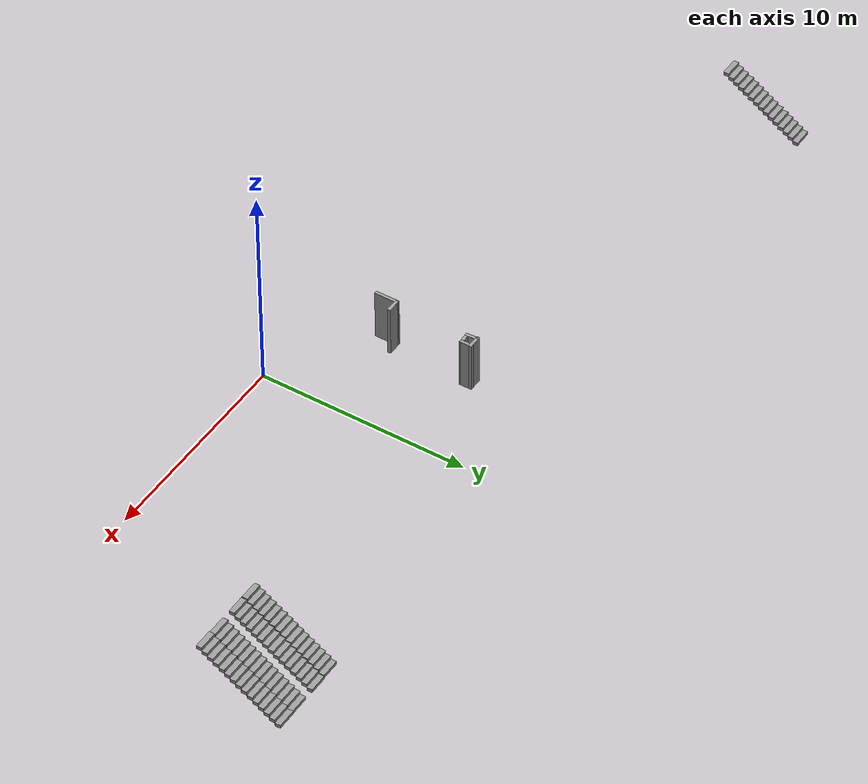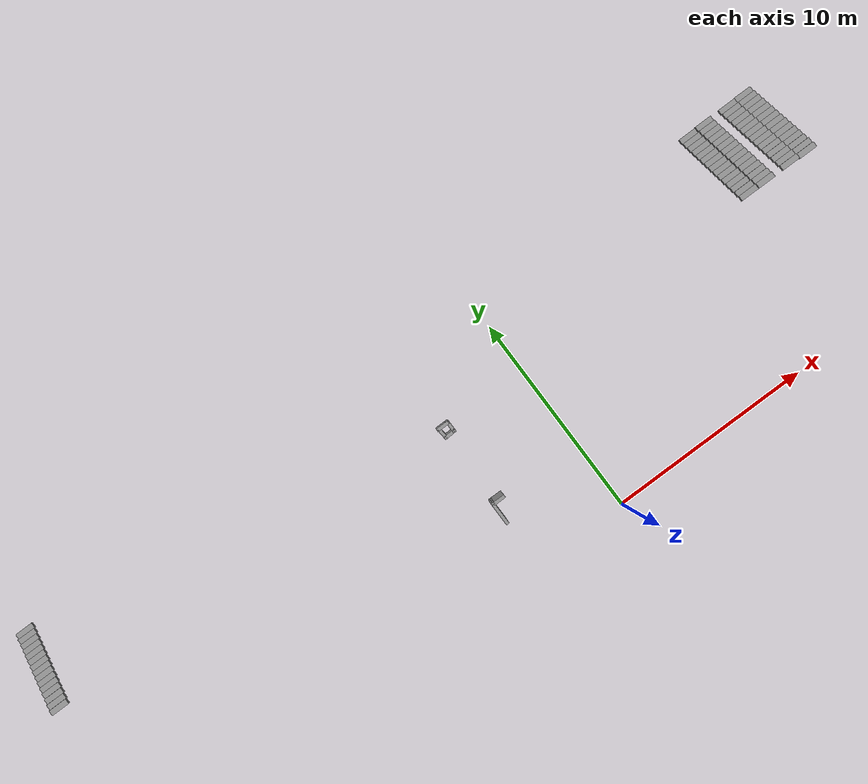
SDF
<sdf version="1.7">
 <model name="TD_n1_largo">
  <pose>-6.3187 -9.13173 0 0 -0 0</pose>
  <link name="Stairs_4">
   <visual name="Stairs_4_Visual_0">
    <pose>-18.7413 20.6787 0.083333 0 -0 0</pose>
    <geometry><box><size>0.9 0.258667 0.166667</size></box></geometry>
    <material>
     <script><uri>file://media/materials/scripts/gazebo.material</uri><name>Gazebo/Grey</name></script>
     <ambient>1 1 1 1</ambient>
    </material>
    <meta><layer>0</layer></meta>
   </visual>
   <collision name="Stairs_4_Collision_0">
    <geometry><box><size>0.9 0.258667 0.166667</size></box></geometry>
    <pose>-18.7413 20.6787 0.083333 0 -0 0</pose>
   </collision>
   <visual name="Stairs_4_Visual_1">
    <pose>-18.7413 20.4201 0.25 0 -0 0</pose>
    <geometry><box><size>0.9 0.258667 0.166667</size></box></geometry>
    <material>
     <script><uri>file://media/materials/scripts/gazebo.material</uri><name>Gazebo/Grey</name></script>
     <ambient>1 1 1 1</ambient>
    </material>
    <meta><layer>0</layer></meta>
   </visual>
   <collision name="Stairs_4_Collision_1">
    <geometry><box><size>0.9 0.258667 0.166667</size></box></geometry>
    <pose>-18.7413 20.4201 0.25 0 -0 0</pose>
   </collision>
   <visual name="Stairs_4_Visual_2">
    <pose>-18.7413 20.1614 0.416667 0 -0 0</pose>
    <geometry><box><size>0.9 0.258667 0.166667</size></box></geometry>
    <material>
     <script><uri>file://media/materials/scripts/gazebo.material</uri><name>Gazebo/Grey</name></script>
     <ambient>1 1 1 1</ambient>
    </material>
    <meta><layer>0</layer></meta>
   </visual>
   <collision name="Stairs_4_Collision_2">
    <geometry><box><size>0.9 0.258667 0.166667</size></box></geometry>
    <pose>-18.7413 20.1614 0.416667 0 -0 0</pose>
   </collision>
   <visual name="Stairs_4_Visual_3">
    <pose>-18.7413 19.9027 0.583333 0 -0 0</pose>
    <geometry><box><size>0.9 0.258667 0.166667</size></box></geometry>
    <material>
     <script><uri>file://media/materials/scripts/gazebo.material</uri><name>Gazebo/Grey</name></script>
     <ambient>1 1 1 1</ambient>
    </material>
    <meta><layer>0</layer></meta>
   </visual>
   <collision name="Stairs_4_Collision_3">
    <geometry><box><size>0.9 0.258667 0.166667</size></box></geometry>
    <pose>-18.7413 19.9027 0.583333 0 -0 0</pose>
   </collision>
   <visual name="Stairs_4_Visual_4">
    <pose>-18.7413 19.6441 0.75 0 -0 0</pose>
    <geometry><box><size>0.9 0.258667 0.166667</size></box></geometry>
    <material>
     <script><uri>file://media/materials/scripts/gazebo.material</uri><name>Gazebo/Grey</name></script>
     <ambient>1 1 1 1</ambient>
    </material>
    <meta><layer>0</layer></meta>
   </visual>
   <collision name="Stairs_4_Collision_4">
    <geometry><box><size>0.9 0.258667 0.166667</size></box></geometry>
    <pose>-18.7413 19.6441 0.75 0 -0 0</pose>
   </collision>
   <visual name="Stairs_4_Visual_5">
    <pose>-18.7413 19.3854 0.916667 0 -0 0</pose>
    <geometry><box><size>0.9 0.258667 0.166667</size></box></geometry>
    <material>
     <script><uri>file://media/materials/scripts/gazebo.material</uri><name>Gazebo/Grey</name></script>
     <ambient>1 1 1 1</ambient>
    </material>
    <meta><layer>0</layer></meta>
   </visual>
   <collision name="Stairs_4_Collision_5">
    <geometry><box><size>0.9 0.258667 0.166667</size></box></geometry>
    <pose>-18.7413 19.3854 0.916667 0 -0 0</pose>
   </collision>
   <visual name="Stairs_4_Visual_6">
    <pose>-18.7413 19.1267 1.08333 0 -0 0</pose>
    <geometry><box><size>0.9 0.258667 0.166667</size></box></geometry>
    <material>
     <script><uri>file://media/materials/scripts/gazebo.material</uri><name>Gazebo/Grey</name></script>
     <ambient>1 1 1 1</ambient>
    </material>
    <meta><layer>0</layer></meta>
   </visual>
   <collision name="Stairs_4_Collision_6">
    <geometry><box><size>0.9 0.258667 0.166667</size></box></geometry>
    <pose>-18.7413 19.1267 1.08333 0 -0 0</pose>
   </collision>
   <visual name="Stairs_4_Visual_7">
    <pose>-18.7413 18.8681 1.25 0 -0 0</pose>
    <geometry><box><size>0.9 0.258667 0.166667</size></box></geometry>
    <material>
     <script><uri>file://media/materials/scripts/gazebo.material</uri><name>Gazebo/Grey</name></script>
     <ambient>1 1 1 1</ambient>
    </material>
    <meta><layer>0</layer></meta>
   </visual>
   <collision name="Stairs_4_Collision_7">
    <geometry><box><size>0.9 0.258667 0.166667</size></box></geometry>
    <pose>-18.7413 18.8681 1.25 0 -0 0</pose>
   </collision>
   <visual name="Stairs_4_Visual_8">
    <pose>-18.7413 18.6094 1.41667 0 -0 0</pose>
    <geometry><box><size>0.9 0.258667 0.166667</size></box></geometry>
    <material>
     <script><uri>file://media/materials/scripts/gazebo.material</uri><name>Gazebo/Grey</name></script>
     <ambient>1 1 1 1</ambient>
    </material>
    <meta><layer>0</layer></meta>
   </visual>
   <collision name="Stairs_4_Collision_8">
    <geometry><box><size>0.9 0.258667 0.166667</size></box></geometry>
    <pose>-18.7413 18.6094 1.41667 0 -0 0</pose>
   </collision>
   <visual name="Stairs_4_Visual_9">
    <pose>-18.7413 18.3507 1.58333 0 -0 0</pose>
    <geometry><box><size>0.9 0.258667 0.166667</size></box></geometry>
    <material>
     <script><uri>file://media/materials/scripts/gazebo.material</uri><name>Gazebo/Grey</name></script>
     <ambient>1 1 1 1</ambient>
    </material>
    <meta><layer>0</layer></meta>
   </visual>
   <collision name="Stairs_4_Collision_9">
    <geometry><box><size>0.9 0.258667 0.166667</size></box></geometry>
    <pose>-18.7413 18.3507 1.58333 0 -0 0</pose>
   </collision>
   <visual name="Stairs_4_Visual_10">
    <pose>-18.7413 18.0921 1.75 0 -0 0</pose>
    <geometry><box><size>0.9 0.258667 0.166667</size></box></geometry>
    <material>
     <script><uri>file://media/materials/scripts/gazebo.material</uri><name>Gazebo/Grey</name></script>
     <ambient>1 1 1 1</ambient>
    </material>
    <meta><layer>0</layer></meta>
   </visual>
   <collision name="Stairs_4_Collision_10">
    <geometry><box><size>0.9 0.258667 0.166667</size></box></geometry>
    <pose>-18.7413 18.0921 1.75 0 -0 0</pose>
   </collision>
   <visual name="Stairs_4_Visual_11">
    <pose>-18.7413 17.8334 1.91667 0 -0 0</pose>
    <geometry><box><size>0.9 0.258667 0.166667</size></box></geometry>
    <material>
     <script><uri>file://media/materials/scripts/gazebo.material</uri><name>Gazebo/Grey</name></script>
     <ambient>1 1 1 1</ambient>
    </material>
    <meta><layer>0</layer></meta>
   </visual>
   <collision name="Stairs_4_Collision_11">
    <geometry><box><size>0.9 0.258667 0.166667</size></box></geometry>
    <pose>-18.7413 17.8334 1.91667 0 -0 0</pose>
   </collision>
   <visual name="Stairs_4_Visual_12">
    <pose>-18.7413 17.5747 2.08333 0 -0 0</pose>
    <geometry><box><size>0.9 0.258667 0.166667</size></box></geometry>
    <material>
     <script><uri>file://media/materials/scripts/gazebo.material</uri><name>Gazebo/Grey</name></script>
     <ambient>1 1 1 1</ambient>
    </material>
    <meta><layer>0</layer></meta>
   </visual>
   <collision name="Stairs_4_Collision_12">
    <geometry><box><size>0.9 0.258667 0.166667</size></box></geometry>
    <pose>-18.7413 17.5747 2.08333 0 -0 0</pose>
   </collision>
   <visual name="Stairs_4_Visual_13">
    <pose>-18.7413 17.3161 2.25 0 -0 0</pose>
    <geometry><box><size>0.9 0.258667 0.166667</size></box></geometry>
    <material>
     <script><uri>file://media/materials/scripts/gazebo.material</uri><name>Gazebo/Grey</name></script>
     <ambient>1 1 1 1</ambient>
    </material>
    <meta><layer>0</layer></meta>
   </visual>
   <collision name="Stairs_4_Collision_13">
    <geometry><box><size>0.9 0.258667 0.166667</size></box></geometry>
    <pose>-18.7413 17.3161 2.25 0 -0 0</pose>
   </collision>
   <visual name="Stairs_4_Visual_14">
    <pose>-18.7413 17.0574 2.41667 0 -0 0</pose>
    <geometry><box><size>0.9 0.258667 0.166667</size></box></geometry>
    <material>
     <script><uri>file://media/materials/scripts/gazebo.material</uri><name>Gazebo/Grey</name></script>
     <ambient>1 1 1 1</ambient>
    </material>
    <meta><layer>0</layer></meta>
   </visual>
   <collision name="Stairs_4_Collision_14">
    <geometry><box><size>0.9 0.258667 0.166667</size></box></geometry>
    <pose>-18.7413 17.0574 2.41667 0 -0 0</pose>
   </collision>
  </link>
  <link name="Stairs_5">
   <visual name="Stairs_5_Visual_0">
    <pose>18.6942 20.6701 0.083333 0 -0 0</pose>
    <geometry><box><size>0.893539 0.257667 0.166667</size></box></geometry>
    <material>
     <script><uri>file://media/materials/scripts/gazebo.material</uri><name>Gazebo/Grey</name></script>
     <ambient>1 1 1 1</ambient>
    </material>
    <meta><layer>0</layer></meta>
   </visual>
   <collision name="Stairs_5_Collision_0">
    <geometry><box><size>0.893539 0.257667 0.166667</size></box></geometry>
    <pose>18.6942 20.6701 0.083333 0 -0 0</pose>
   </collision>
   <visual name="Stairs_5_Visual_1">
    <pose>18.6942 20.4124 0.25 0 -0 0</pose>
    <geometry><box><size>0.893539 0.257667 0.166667</size></box></geometry>
    <material>
     <script><uri>file://media/materials/scripts/gazebo.material</uri><name>Gazebo/Grey</name></script>
     <ambient>1 1 1 1</ambient>
    </material>
    <meta><layer>0</layer></meta>
   </visual>
   <collision name="Stairs_5_Collision_1">
    <geometry><box><size>0.893539 0.257667 0.166667</size></box></geometry>
    <pose>18.6942 20.4124 0.25 0 -0 0</pose>
   </collision>
   <visual name="Stairs_5_Visual_2">
    <pose>18.6942 20.1547 0.416667 0 -0 0</pose>
    <geometry><box><size>0.893539 0.257667 0.166667</size></box></geometry>
    <material>
     <script><uri>file://media/materials/scripts/gazebo.material</uri><name>Gazebo/Grey</name></script>
     <ambient>1 1 1 1</ambient>
    </material>
    <meta><layer>0</layer></meta>
   </visual>
   <collision name="Stairs_5_Collision_2">
    <geometry><box><size>0.893539 0.257667 0.166667</size></box></geometry>
    <pose>18.6942 20.1547 0.416667 0 -0 0</pose>
   </collision>
   <visual name="Stairs_5_Visual_3">
    <pose>18.6942 19.8971 0.583333 0 -0 0</pose>
    <geometry><box><size>0.893539 0.257667 0.166667</size></box></geometry>
    <material>
     <script><uri>file://media/materials/scripts/gazebo.material</uri><name>Gazebo/Grey</name></script>
     <ambient>1 1 1 1</ambient>
    </material>
    <meta><layer>0</layer></meta>
   </visual>
   <collision name="Stairs_5_Collision_3">
    <geometry><box><size>0.893539 0.257667 0.166667</size></box></geometry>
    <pose>18.6942 19.8971 0.583333 0 -0 0</pose>
   </collision>
   <visual name="Stairs_5_Visual_4">
    <pose>18.6942 19.6394 0.75 0 -0 0</pose>
    <geometry><box><size>0.893539 0.257667 0.166667</size></box></geometry>
    <material>
     <script><uri>file://media/materials/scripts/gazebo.material</uri><name>Gazebo/Grey</name></script>
     <ambient>1 1 1 1</ambient>
    </material>
    <meta><layer>0</layer></meta>
   </visual>
   <collision name="Stairs_5_Collision_4">
    <geometry><box><size>0.893539 0.257667 0.166667</size></box></geometry>
    <pose>18.6942 19.6394 0.75 0 -0 0</pose>
   </collision>
   <visual name="Stairs_5_Visual_5">
    <pose>18.6942 19.3817 0.916667 0 -0 0</pose>
    <geometry><box><size>0.893539 0.257667 0.166667</size></box></geometry>
    <material>
     <script><uri>file://media/materials/scripts/gazebo.material</uri><name>Gazebo/Grey</name></script>
     <ambient>1 1 1 1</ambient>
    </material>
    <meta><layer>0</layer></meta>
   </visual>
   <collision name="Stairs_5_Collision_5">
    <geometry><box><size>0.893539 0.257667 0.166667</size></box></geometry>
    <pose>18.6942 19.3817 0.916667 0 -0 0</pose>
   </collision>
   <visual name="Stairs_5_Visual_6">
    <pose>18.6942 19.1241 1.08333 0 -0 0</pose>
    <geometry><box><size>0.893539 0.257667 0.166667</size></box></geometry>
    <material>
     <script><uri>file://media/materials/scripts/gazebo.material</uri><name>Gazebo/Grey</name></script>
     <ambient>1 1 1 1</ambient>
    </material>
    <meta><layer>0</layer></meta>
   </visual>
   <collision name="Stairs_5_Collision_6">
    <geometry><box><size>0.893539 0.257667 0.166667</size></box></geometry>
    <pose>18.6942 19.1241 1.08333 0 -0 0</pose>
   </collision>
   <visual name="Stairs_5_Visual_7">
    <pose>18.6942 18.8664 1.25 0 -0 0</pose>
    <geometry><box><size>0.893539 0.257667 0.166667</size></box></geometry>
    <material>
     <script><uri>file://media/materials/scripts/gazebo.material</uri><name>Gazebo/Grey</name></script>
     <ambient>1 1 1 1</ambient>
    </material>
    <meta><layer>0</layer></meta>
   </visual>
   <collision name="Stairs_5_Collision_7">
    <geometry><box><size>0.893539 0.257667 0.166667</size></box></geometry>
    <pose>18.6942 18.8664 1.25 0 -0 0</pose>
   </collision>
   <visual name="Stairs_5_Visual_8">
    <pose>18.6942 18.6087 1.41667 0 -0 0</pose>
    <geometry><box><size>0.893539 0.257667 0.166667</size></box></geometry>
    <material>
     <script><uri>file://media/materials/scripts/gazebo.material</uri><name>Gazebo/Grey</name></script>
     <ambient>1 1 1 1</ambient>
    </material>
    <meta><layer>0</layer></meta>
   </visual>
   <collision name="Stairs_5_Collision_8">
    <geometry><box><size>0.893539 0.257667 0.166667</size></box></geometry>
    <pose>18.6942 18.6087 1.41667 0 -0 0</pose>
   </collision>
   <visual name="Stairs_5_Visual_9">
    <pose>18.6942 18.3511 1.58333 0 -0 0</pose>
    <geometry><box><size>0.893539 0.257667 0.166667</size></box></geometry>
    <material>
     <script><uri>file://media/materials/scripts/gazebo.material</uri><name>Gazebo/Grey</name></script>
     <ambient>1 1 1 1</ambient>
    </material>
    <meta><layer>0</layer></meta>
   </visual>
   <collision name="Stairs_5_Collision_9">
    <geometry><box><size>0.893539 0.257667 0.166667</size></box></geometry>
    <pose>18.6942 18.3511 1.58333 0 -0 0</pose>
   </collision>
   <visual name="Stairs_5_Visual_10">
    <pose>18.6942 18.0934 1.75 0 -0 0</pose>
    <geometry><box><size>0.893539 0.257667 0.166667</size></box></geometry>
    <material>
     <script><uri>file://media/materials/scripts/gazebo.material</uri><name>Gazebo/Grey</name></script>
     <ambient>1 1 1 1</ambient>
    </material>
    <meta><layer>0</layer></meta>
   </visual>
   <collision name="Stairs_5_Collision_10">
    <geometry><box><size>0.893539 0.257667 0.166667</size></box></geometry>
    <pose>18.6942 18.0934 1.75 0 -0 0</pose>
   </collision>
   <visual name="Stairs_5_Visual_11">
    <pose>18.6942 17.8357 1.91667 0 -0 0</pose>
    <geometry><box><size>0.893539 0.257667 0.166667</size></box></geometry>
    <material>
     <script><uri>file://media/materials/scripts/gazebo.material</uri><name>Gazebo/Grey</name></script>
     <ambient>1 1 1 1</ambient>
    </material>
    <meta><layer>0</layer></meta>
   </visual>
   <collision name="Stairs_5_Collision_11">
    <geometry><box><size>0.893539 0.257667 0.166667</size></box></geometry>
    <pose>18.6942 17.8357 1.91667 0 -0 0</pose>
   </collision>
   <visual name="Stairs_5_Visual_12">
    <pose>18.6942 17.5781 2.08333 0 -0 0</pose>
    <geometry><box><size>0.893539 0.257667 0.166667</size></box></geometry>
    <material>
     <script><uri>file://media/materials/scripts/gazebo.material</uri><name>Gazebo/Grey</name></script>
     <ambient>1 1 1 1</ambient>
    </material>
    <meta><layer>0</layer></meta>
   </visual>
   <collision name="Stairs_5_Collision_12">
    <geometry><box><size>0.893539 0.257667 0.166667</size></box></geometry>
    <pose>18.6942 17.5781 2.08333 0 -0 0</pose>
   </collision>
   <visual name="Stairs_5_Visual_13">
    <pose>18.6942 17.3204 2.25 0 -0 0</pose>
    <geometry><box><size>0.893539 0.257667 0.166667</size></box></geometry>
    <material>
     <script><uri>file://media/materials/scripts/gazebo.material</uri><name>Gazebo/Grey</name></script>
     <ambient>1 1 1 1</ambient>
    </material>
    <meta><layer>0</layer></meta>
   </visual>
   <collision name="Stairs_5_Collision_13">
    <geometry><box><size>0.893539 0.257667 0.166667</size></box></geometry>
    <pose>18.6942 17.3204 2.25 0 -0 0</pose>
   </collision>
   <visual name="Stairs_5_Visual_14">
    <pose>18.6942 17.0627 2.41667 0 -0 0</pose>
    <geometry><box><size>0.893539 0.257667 0.166667</size></box></geometry>
    <material>
     <script><uri>file://media/materials/scripts/gazebo.material</uri><name>Gazebo/Grey</name></script>
     <ambient>1 1 1 1</ambient>
    </material>
    <meta><layer>0</layer></meta>
   </visual>
   <collision name="Stairs_5_Collision_14">
    <geometry><box><size>0.893539 0.257667 0.166667</size></box></geometry>
    <pose>18.6942 17.0627 2.41667 0 -0 0</pose>
   </collision>
  </link>
  <link name="Stairs_6">
   <visual name="Stairs_6_Visual_0">
    <pose>19.6067 20.6995 0.083333 0 -0 0</pose>
    <geometry><box><size>0.863121 0.259695 0.166667</size></box></geometry>
    <material>
     <script><uri>file://media/materials/scripts/gazebo.material</uri><name>Gazebo/Grey</name></script>
     <ambient>1 1 1 1</ambient>
    </material>
    <meta><layer>0</layer></meta>
   </visual>
   <collision name="Stairs_6_Collision_0">
    <geometry><box><size>0.863121 0.259695 0.166667</size></box></geometry>
    <pose>19.6067 20.6995 0.083333 0 -0 0</pose>
   </collision>
   <visual name="Stairs_6_Visual_1">
    <pose>19.6067 20.4398 0.25 0 -0 0</pose>
    <geometry><box><size>0.863121 0.259695 0.166667</size></box></geometry>
    <material>
     <script><uri>file://media/materials/scripts/gazebo.material</uri><name>Gazebo/Grey</name></script>
     <ambient>1 1 1 1</ambient>
    </material>
    <meta><layer>0</layer></meta>
   </visual>
   <collision name="Stairs_6_Collision_1">
    <geometry><box><size>0.863121 0.259695 0.166667</size></box></geometry>
    <pose>19.6067 20.4398 0.25 0 -0 0</pose>
   </collision>
   <visual name="Stairs_6_Visual_2">
    <pose>19.6067 20.1801 0.416667 0 -0 0</pose>
    <geometry><box><size>0.863121 0.259695 0.166667</size></box></geometry>
    <material>
     <script><uri>file://media/materials/scripts/gazebo.material</uri><name>Gazebo/Grey</name></script>
     <ambient>1 1 1 1</ambient>
    </material>
    <meta><layer>0</layer></meta>
   </visual>
   <collision name="Stairs_6_Collision_2">
    <geometry><box><size>0.863121 0.259695 0.166667</size></box></geometry>
    <pose>19.6067 20.1801 0.416667 0 -0 0</pose>
   </collision>
   <visual name="Stairs_6_Visual_3">
    <pose>19.6067 19.9204 0.583333 0 -0 0</pose>
    <geometry><box><size>0.863121 0.259695 0.166667</size></box></geometry>
    <material>
     <script><uri>file://media/materials/scripts/gazebo.material</uri><name>Gazebo/Grey</name></script>
     <ambient>1 1 1 1</ambient>
    </material>
    <meta><layer>0</layer></meta>
   </visual>
   <collision name="Stairs_6_Collision_3">
    <geometry><box><size>0.863121 0.259695 0.166667</size></box></geometry>
    <pose>19.6067 19.9204 0.583333 0 -0 0</pose>
   </collision>
   <visual name="Stairs_6_Visual_4">
    <pose>19.6067 19.6607 0.75 0 -0 0</pose>
    <geometry><box><size>0.863121 0.259695 0.166667</size></box></geometry>
    <material>
     <script><uri>file://media/materials/scripts/gazebo.material</uri><name>Gazebo/Grey</name></script>
     <ambient>1 1 1 1</ambient>
    </material>
    <meta><layer>0</layer></meta>
   </visual>
   <collision name="Stairs_6_Collision_4">
    <geometry><box><size>0.863121 0.259695 0.166667</size></box></geometry>
    <pose>19.6067 19.6607 0.75 0 -0 0</pose>
   </collision>
   <visual name="Stairs_6_Visual_5">
    <pose>19.6067 19.401 0.916667 0 -0 0</pose>
    <geometry><box><size>0.863121 0.259695 0.166667</size></box></geometry>
    <material>
     <script><uri>file://media/materials/scripts/gazebo.material</uri><name>Gazebo/Grey</name></script>
     <ambient>1 1 1 1</ambient>
    </material>
    <meta><layer>0</layer></meta>
   </visual>
   <collision name="Stairs_6_Collision_5">
    <geometry><box><size>0.863121 0.259695 0.166667</size></box></geometry>
    <pose>19.6067 19.401 0.916667 0 -0 0</pose>
   </collision>
   <visual name="Stairs_6_Visual_6">
    <pose>19.6067 19.1413 1.08333 0 -0 0</pose>
    <geometry><box><size>0.863121 0.259695 0.166667</size></box></geometry>
    <material>
     <script><uri>file://media/materials/scripts/gazebo.material</uri><name>Gazebo/Grey</name></script>
     <ambient>1 1 1 1</ambient>
    </material>
    <meta><layer>0</layer></meta>
   </visual>
   <collision name="Stairs_6_Collision_6">
    <geometry><box><size>0.863121 0.259695 0.166667</size></box></geometry>
    <pose>19.6067 19.1413 1.08333 0 -0 0</pose>
   </collision>
   <visual name="Stairs_6_Visual_7">
    <pose>19.6067 18.8816 1.25 0 -0 0</pose>
    <geometry><box><size>0.863121 0.259695 0.166667</size></box></geometry>
    <material>
     <script><uri>file://media/materials/scripts/gazebo.material</uri><name>Gazebo/Grey</name></script>
     <ambient>1 1 1 1</ambient>
    </material>
    <meta><layer>0</layer></meta>
   </visual>
   <collision name="Stairs_6_Collision_7">
    <geometry><box><size>0.863121 0.259695 0.166667</size></box></geometry>
    <pose>19.6067 18.8816 1.25 0 -0 0</pose>
   </collision>
   <visual name="Stairs_6_Visual_8">
    <pose>19.6067 18.6219 1.41667 0 -0 0</pose>
    <geometry><box><size>0.863121 0.259695 0.166667</size></box></geometry>
    <material>
     <script><uri>file://media/materials/scripts/gazebo.material</uri><name>Gazebo/Grey</name></script>
     <ambient>1 1 1 1</ambient>
    </material>
    <meta><layer>0</layer></meta>
   </visual>
   <collision name="Stairs_6_Collision_8">
    <geometry><box><size>0.863121 0.259695 0.166667</size></box></geometry>
    <pose>19.6067 18.6219 1.41667 0 -0 0</pose>
   </collision>
   <visual name="Stairs_6_Visual_9">
    <pose>19.6067 18.3622 1.58333 0 -0 0</pose>
    <geometry><box><size>0.863121 0.259695 0.166667</size></box></geometry>
    <material>
     <script><uri>file://media/materials/scripts/gazebo.material</uri><name>Gazebo/Grey</name></script>
     <ambient>1 1 1 1</ambient>
    </material>
    <meta><layer>0</layer></meta>
   </visual>
   <collision name="Stairs_6_Collision_9">
    <geometry><box><size>0.863121 0.259695 0.166667</size></box></geometry>
    <pose>19.6067 18.3622 1.58333 0 -0 0</pose>
   </collision>
   <visual name="Stairs_6_Visual_10">
    <pose>19.6067 18.1025 1.75 0 -0 0</pose>
    <geometry><box><size>0.863121 0.259695 0.166667</size></box></geometry>
    <material>
     <script><uri>file://media/materials/scripts/gazebo.material</uri><name>Gazebo/Grey</name></script>
     <ambient>1 1 1 1</ambient>
    </material>
    <meta><layer>0</layer></meta>
   </visual>
   <collision name="Stairs_6_Collision_10">
    <geometry><box><size>0.863121 0.259695 0.166667</size></box></geometry>
    <pose>19.6067 18.1025 1.75 0 -0 0</pose>
   </collision>
   <visual name="Stairs_6_Visual_11">
    <pose>19.6067 17.8428 1.91667 0 -0 0</pose>
    <geometry><box><size>0.863121 0.259695 0.166667</size></box></geometry>
    <material>
     <script><uri>file://media/materials/scripts/gazebo.material</uri><name>Gazebo/Grey</name></script>
     <ambient>1 1 1 1</ambient>
    </material>
    <meta><layer>0</layer></meta>
   </visual>
   <collision name="Stairs_6_Collision_11">
    <geometry><box><size>0.863121 0.259695 0.166667</size></box></geometry>
    <pose>19.6067 17.8428 1.91667 0 -0 0</pose>
   </collision>
   <visual name="Stairs_6_Visual_12">
    <pose>19.6067 17.5831 2.08333 0 -0 0</pose>
    <geometry><box><size>0.863121 0.259695 0.166667</size></box></geometry>
    <material>
     <script><uri>file://media/materials/scripts/gazebo.material</uri><name>Gazebo/Grey</name></script>
     <ambient>1 1 1 1</ambient>
    </material>
    <meta><layer>0</layer></meta>
   </visual>
   <collision name="Stairs_6_Collision_12">
    <geometry><box><size>0.863121 0.259695 0.166667</size></box></geometry>
    <pose>19.6067 17.5831 2.08333 0 -0 0</pose>
   </collision>
   <visual name="Stairs_6_Visual_13">
    <pose>19.6067 17.3234 2.25 0 -0 0</pose>
    <geometry><box><size>0.863121 0.259695 0.166667</size></box></geometry>
    <material>
     <script><uri>file://media/materials/scripts/gazebo.material</uri><name>Gazebo/Grey</name></script>
     <ambient>1 1 1 1</ambient>
    </material>
    <meta><layer>0</layer></meta>
   </visual>
   <collision name="Stairs_6_Collision_13">
    <geometry><box><size>0.863121 0.259695 0.166667</size></box></geometry>
    <pose>19.6067 17.3234 2.25 0 -0 0</pose>
   </collision>
   <visual name="Stairs_6_Visual_14">
    <pose>19.6067 17.0637 2.41667 0 -0 0</pose>
    <geometry><box><size>0.863121 0.259695 0.166667</size></box></geometry>
    <material>
     <script><uri>file://media/materials/scripts/gazebo.material</uri><name>Gazebo/Grey</name></script>
     <ambient>1 1 1 1</ambient>
    </material>
    <meta><layer>0</layer></meta>
   </visual>
   <collision name="Stairs_6_Collision_14">
    <geometry><box><size>0.863121 0.259695 0.166667</size></box></geometry>
    <pose>19.6067 17.0637 2.41667 0 -0 0</pose>
   </collision>
  </link>
  <link name="Stairs_7">
   <visual name="Stairs_7_Visual_0">
    <pose>20.9222 20.6848 0.083333 0 -0 0</pose>
    <geometry><box><size>0.908748 0.258681 0.166667</size></box></geometry>
    <material>
     <script><uri>file://media/materials/scripts/gazebo.material</uri><name>Gazebo/Grey</name></script>
     <ambient>1 1 1 1</ambient>
    </material>
    <meta><layer>0</layer></meta>
   </visual>
   <collision name="Stairs_7_Collision_0">
    <geometry><box><size>0.908748 0.258681 0.166667</size></box></geometry>
    <pose>20.9222 20.6848 0.083333 0 -0 0</pose>
   </collision>
   <visual name="Stairs_7_Visual_1">
    <pose>20.9222 20.4261 0.25 0 -0 0</pose>
    <geometry><box><size>0.908748 0.258681 0.166667</size></box></geometry>
    <material>
     <script><uri>file://media/materials/scripts/gazebo.material</uri><name>Gazebo/Grey</name></script>
     <ambient>1 1 1 1</ambient>
    </material>
    <meta><layer>0</layer></meta>
   </visual>
   <collision name="Stairs_7_Collision_1">
    <geometry><box><size>0.908748 0.258681 0.166667</size></box></geometry>
    <pose>20.9222 20.4261 0.25 0 -0 0</pose>
   </collision>
   <visual name="Stairs_7_Visual_2">
    <pose>20.9222 20.1674 0.416667 0 -0 0</pose>
    <geometry><box><size>0.908748 0.258681 0.166667</size></box></geometry>
    <material>
     <script><uri>file://media/materials/scripts/gazebo.material</uri><name>Gazebo/Grey</name></script>
     <ambient>1 1 1 1</ambient>
    </material>
    <meta><layer>0</layer></meta>
   </visual>
   <collision name="Stairs_7_Collision_2">
    <geometry><box><size>0.908748 0.258681 0.166667</size></box></geometry>
    <pose>20.9222 20.1674 0.416667 0 -0 0</pose>
   </collision>
   <visual name="Stairs_7_Visual_3">
    <pose>20.9222 19.9087 0.583333 0 -0 0</pose>
    <geometry><box><size>0.908748 0.258681 0.166667</size></box></geometry>
    <material>
     <script><uri>file://media/materials/scripts/gazebo.material</uri><name>Gazebo/Grey</name></script>
     <ambient>1 1 1 1</ambient>
    </material>
    <meta><layer>0</layer></meta>
   </visual>
   <collision name="Stairs_7_Collision_3">
    <geometry><box><size>0.908748 0.258681 0.166667</size></box></geometry>
    <pose>20.9222 19.9087 0.583333 0 -0 0</pose>
   </collision>
   <visual name="Stairs_7_Visual_4">
    <pose>20.9222 19.65 0.75 0 -0 0</pose>
    <geometry><box><size>0.908748 0.258681 0.166667</size></box></geometry>
    <material>
     <script><uri>file://media/materials/scripts/gazebo.material</uri><name>Gazebo/Grey</name></script>
     <ambient>1 1 1 1</ambient>
    </material>
    <meta><layer>0</layer></meta>
   </visual>
   <collision name="Stairs_7_Collision_4">
    <geometry><box><size>0.908748 0.258681 0.166667</size></box></geometry>
    <pose>20.9222 19.65 0.75 0 -0 0</pose>
   </collision>
   <visual name="Stairs_7_Visual_5">
    <pose>20.9222 19.3914 0.916667 0 -0 0</pose>
    <geometry><box><size>0.908748 0.258681 0.166667</size></box></geometry>
    <material>
     <script><uri>file://media/materials/scripts/gazebo.material</uri><name>Gazebo/Grey</name></script>
     <ambient>1 1 1 1</ambient>
    </material>
    <meta><layer>0</layer></meta>
   </visual>
   <collision name="Stairs_7_Collision_5">
    <geometry><box><size>0.908748 0.258681 0.166667</size></box></geometry>
    <pose>20.9222 19.3914 0.916667 0 -0 0</pose>
   </collision>
   <visual name="Stairs_7_Visual_6">
    <pose>20.9222 19.1327 1.08333 0 -0 0</pose>
    <geometry><box><size>0.908748 0.258681 0.166667</size></box></geometry>
    <material>
     <script><uri>file://media/materials/scripts/gazebo.material</uri><name>Gazebo/Grey</name></script>
     <ambient>1 1 1 1</ambient>
    </material>
    <meta><layer>0</layer></meta>
   </visual>
   <collision name="Stairs_7_Collision_6">
    <geometry><box><size>0.908748 0.258681 0.166667</size></box></geometry>
    <pose>20.9222 19.1327 1.08333 0 -0 0</pose>
   </collision>
   <visual name="Stairs_7_Visual_7">
    <pose>20.9222 18.874 1.25 0 -0 0</pose>
    <geometry><box><size>0.908748 0.258681 0.166667</size></box></geometry>
    <material>
     <script><uri>file://media/materials/scripts/gazebo.material</uri><name>Gazebo/Grey</name></script>
     <ambient>1 1 1 1</ambient>
    </material>
    <meta><layer>0</layer></meta>
   </visual>
   <collision name="Stairs_7_Collision_7">
    <geometry><box><size>0.908748 0.258681 0.166667</size></box></geometry>
    <pose>20.9222 18.874 1.25 0 -0 0</pose>
   </collision>
   <visual name="Stairs_7_Visual_8">
    <pose>20.9222 18.6153 1.41667 0 -0 0</pose>
    <geometry><box><size>0.908748 0.258681 0.166667</size></box></geometry>
    <material>
     <script><uri>file://media/materials/scripts/gazebo.material</uri><name>Gazebo/Grey</name></script>
     <ambient>1 1 1 1</ambient>
    </material>
    <meta><layer>0</layer></meta>
   </visual>
   <collision name="Stairs_7_Collision_8">
    <geometry><box><size>0.908748 0.258681 0.166667</size></box></geometry>
    <pose>20.9222 18.6153 1.41667 0 -0 0</pose>
   </collision>
   <visual name="Stairs_7_Visual_9">
    <pose>20.9222 18.3566 1.58333 0 -0 0</pose>
    <geometry><box><size>0.908748 0.258681 0.166667</size></box></geometry>
    <material>
     <script><uri>file://media/materials/scripts/gazebo.material</uri><name>Gazebo/Grey</name></script>
     <ambient>1 1 1 1</ambient>
    </material>
    <meta><layer>0</layer></meta>
   </visual>
   <collision name="Stairs_7_Collision_9">
    <geometry><box><size>0.908748 0.258681 0.166667</size></box></geometry>
    <pose>20.9222 18.3566 1.58333 0 -0 0</pose>
   </collision>
   <visual name="Stairs_7_Visual_10">
    <pose>20.9222 18.0979 1.75 0 -0 0</pose>
    <geometry><box><size>0.908748 0.258681 0.166667</size></box></geometry>
    <material>
     <script><uri>file://media/materials/scripts/gazebo.material</uri><name>Gazebo/Grey</name></script>
     <ambient>1 1 1 1</ambient>
    </material>
    <meta><layer>0</layer></meta>
   </visual>
   <collision name="Stairs_7_Collision_10">
    <geometry><box><size>0.908748 0.258681 0.166667</size></box></geometry>
    <pose>20.9222 18.0979 1.75 0 -0 0</pose>
   </collision>
   <visual name="Stairs_7_Visual_11">
    <pose>20.9222 17.8393 1.91667 0 -0 0</pose>
    <geometry><box><size>0.908748 0.258681 0.166667</size></box></geometry>
    <material>
     <script><uri>file://media/materials/scripts/gazebo.material</uri><name>Gazebo/Grey</name></script>
     <ambient>1 1 1 1</ambient>
    </material>
    <meta><layer>0</layer></meta>
   </visual>
   <collision name="Stairs_7_Collision_11">
    <geometry><box><size>0.908748 0.258681 0.166667</size></box></geometry>
    <pose>20.9222 17.8393 1.91667 0 -0 0</pose>
   </collision>
   <visual name="Stairs_7_Visual_12">
    <pose>20.9222 17.5806 2.08333 0 -0 0</pose>
    <geometry><box><size>0.908748 0.258681 0.166667</size></box></geometry>
    <material>
     <script><uri>file://media/materials/scripts/gazebo.material</uri><name>Gazebo/Grey</name></script>
     <ambient>1 1 1 1</ambient>
    </material>
    <meta><layer>0</layer></meta>
   </visual>
   <collision name="Stairs_7_Collision_12">
    <geometry><box><size>0.908748 0.258681 0.166667</size></box></geometry>
    <pose>20.9222 17.5806 2.08333 0 -0 0</pose>
   </collision>
   <visual name="Stairs_7_Visual_13">
    <pose>20.9222 17.3219 2.25 0 -0 0</pose>
    <geometry><box><size>0.908748 0.258681 0.166667</size></box></geometry>
    <material>
     <script><uri>file://media/materials/scripts/gazebo.material</uri><name>Gazebo/Grey</name></script>
     <ambient>1 1 1 1</ambient>
    </material>
    <meta><layer>0</layer></meta>
   </visual>
   <collision name="Stairs_7_Collision_13">
    <geometry><box><size>0.908748 0.258681 0.166667</size></box></geometry>
    <pose>20.9222 17.3219 2.25 0 -0 0</pose>
   </collision>
   <visual name="Stairs_7_Visual_14">
    <pose>20.9222 17.0632 2.41667 0 -0 0</pose>
    <geometry><box><size>0.908748 0.258681 0.166667</size></box></geometry>
    <material>
     <script><uri>file://media/materials/scripts/gazebo.material</uri><name>Gazebo/Grey</name></script>
     <ambient>1 1 1 1</ambient>
    </material>
    <meta><layer>0</layer></meta>
   </visual>
   <collision name="Stairs_7_Collision_14">
    <geometry><box><size>0.908748 0.258681 0.166667</size></box></geometry>
    <pose>20.9222 17.0632 2.41667 0 -0 0</pose>
   </collision>
  </link>
  <link name="Stairs_8">
   <visual name="Stairs_8_Visual_0">
    <pose>21.8195 20.6984 0.083333 0 -0 0</pose>
    <geometry><box><size>0.908748 0.261723 0.166667</size></box></geometry>
    <material>
     <script><uri>file://media/materials/scripts/gazebo.material</uri><name>Gazebo/Grey</name></script>
     <ambient>1 1 1 1</ambient>
    </material>
    <meta><layer>0</layer></meta>
   </visual>
   <collision name="Stairs_8_Collision_0">
    <geometry><box><size>0.908748 0.261723 0.166667</size></box></geometry>
    <pose>21.8195 20.6984 0.083333 0 -0 0</pose>
   </collision>
   <visual name="Stairs_8_Visual_1">
    <pose>21.8195 20.4367 0.25 0 -0 0</pose>
    <geometry><box><size>0.908748 0.261723 0.166667</size></box></geometry>
    <material>
     <script><uri>file://media/materials/scripts/gazebo.material</uri><name>Gazebo/Grey</name></script>
     <ambient>1 1 1 1</ambient>
    </material>
    <meta><layer>0</layer></meta>
   </visual>
   <collision name="Stairs_8_Collision_1">
    <geometry><box><size>0.908748 0.261723 0.166667</size></box></geometry>
    <pose>21.8195 20.4367 0.25 0 -0 0</pose>
   </collision>
   <visual name="Stairs_8_Visual_2">
    <pose>21.8195 20.175 0.416667 0 -0 0</pose>
    <geometry><box><size>0.908748 0.261723 0.166667</size></box></geometry>
    <material>
     <script><uri>file://media/materials/scripts/gazebo.material</uri><name>Gazebo/Grey</name></script>
     <ambient>1 1 1 1</ambient>
    </material>
    <meta><layer>0</layer></meta>
   </visual>
   <collision name="Stairs_8_Collision_2">
    <geometry><box><size>0.908748 0.261723 0.166667</size></box></geometry>
    <pose>21.8195 20.175 0.416667 0 -0 0</pose>
   </collision>
   <visual name="Stairs_8_Visual_3">
    <pose>21.8195 19.9133 0.583333 0 -0 0</pose>
    <geometry><box><size>0.908748 0.261723 0.166667</size></box></geometry>
    <material>
     <script><uri>file://media/materials/scripts/gazebo.material</uri><name>Gazebo/Grey</name></script>
     <ambient>1 1 1 1</ambient>
    </material>
    <meta><layer>0</layer></meta>
   </visual>
   <collision name="Stairs_8_Collision_3">
    <geometry><box><size>0.908748 0.261723 0.166667</size></box></geometry>
    <pose>21.8195 19.9133 0.583333 0 -0 0</pose>
   </collision>
   <visual name="Stairs_8_Visual_4">
    <pose>21.8195 19.6516 0.75 0 -0 0</pose>
    <geometry><box><size>0.908748 0.261723 0.166667</size></box></geometry>
    <material>
     <script><uri>file://media/materials/scripts/gazebo.material</uri><name>Gazebo/Grey</name></script>
     <ambient>1 1 1 1</ambient>
    </material>
    <meta><layer>0</layer></meta>
   </visual>
   <collision name="Stairs_8_Collision_4">
    <geometry><box><size>0.908748 0.261723 0.166667</size></box></geometry>
    <pose>21.8195 19.6516 0.75 0 -0 0</pose>
   </collision>
   <visual name="Stairs_8_Visual_5">
    <pose>21.8195 19.3898 0.916667 0 -0 0</pose>
    <geometry><box><size>0.908748 0.261723 0.166667</size></box></geometry>
    <material>
     <script><uri>file://media/materials/scripts/gazebo.material</uri><name>Gazebo/Grey</name></script>
     <ambient>1 1 1 1</ambient>
    </material>
    <meta><layer>0</layer></meta>
   </visual>
   <collision name="Stairs_8_Collision_5">
    <geometry><box><size>0.908748 0.261723 0.166667</size></box></geometry>
    <pose>21.8195 19.3898 0.916667 0 -0 0</pose>
   </collision>
   <visual name="Stairs_8_Visual_6">
    <pose>21.8195 19.1281 1.08333 0 -0 0</pose>
    <geometry><box><size>0.908748 0.261723 0.166667</size></box></geometry>
    <material>
     <script><uri>file://media/materials/scripts/gazebo.material</uri><name>Gazebo/Grey</name></script>
     <ambient>1 1 1 1</ambient>
    </material>
    <meta><layer>0</layer></meta>
   </visual>
   <collision name="Stairs_8_Collision_6">
    <geometry><box><size>0.908748 0.261723 0.166667</size></box></geometry>
    <pose>21.8195 19.1281 1.08333 0 -0 0</pose>
   </collision>
   <visual name="Stairs_8_Visual_7">
    <pose>21.8195 18.8664 1.25 0 -0 0</pose>
    <geometry><box><size>0.908748 0.261723 0.166667</size></box></geometry>
    <material>
     <script><uri>file://media/materials/scripts/gazebo.material</uri><name>Gazebo/Grey</name></script>
     <ambient>1 1 1 1</ambient>
    </material>
    <meta><layer>0</layer></meta>
   </visual>
   <collision name="Stairs_8_Collision_7">
    <geometry><box><size>0.908748 0.261723 0.166667</size></box></geometry>
    <pose>21.8195 18.8664 1.25 0 -0 0</pose>
   </collision>
   <visual name="Stairs_8_Visual_8">
    <pose>21.8195 18.6047 1.41667 0 -0 0</pose>
    <geometry><box><size>0.908748 0.261723 0.166667</size></box></geometry>
    <material>
     <script><uri>file://media/materials/scripts/gazebo.material</uri><name>Gazebo/Grey</name></script>
     <ambient>1 1 1 1</ambient>
    </material>
    <meta><layer>0</layer></meta>
   </visual>
   <collision name="Stairs_8_Collision_8">
    <geometry><box><size>0.908748 0.261723 0.166667</size></box></geometry>
    <pose>21.8195 18.6047 1.41667 0 -0 0</pose>
   </collision>
   <visual name="Stairs_8_Visual_9">
    <pose>21.8195 18.3429 1.58333 0 -0 0</pose>
    <geometry><box><size>0.908748 0.261723 0.166667</size></box></geometry>
    <material>
     <script><uri>file://media/materials/scripts/gazebo.material</uri><name>Gazebo/Grey</name></script>
     <ambient>1 1 1 1</ambient>
    </material>
    <meta><layer>0</layer></meta>
   </visual>
   <collision name="Stairs_8_Collision_9">
    <geometry><box><size>0.908748 0.261723 0.166667</size></box></geometry>
    <pose>21.8195 18.3429 1.58333 0 -0 0</pose>
   </collision>
   <visual name="Stairs_8_Visual_10">
    <pose>21.8195 18.0812 1.75 0 -0 0</pose>
    <geometry><box><size>0.908748 0.261723 0.166667</size></box></geometry>
    <material>
     <script><uri>file://media/materials/scripts/gazebo.material</uri><name>Gazebo/Grey</name></script>
     <ambient>1 1 1 1</ambient>
    </material>
    <meta><layer>0</layer></meta>
   </visual>
   <collision name="Stairs_8_Collision_10">
    <geometry><box><size>0.908748 0.261723 0.166667</size></box></geometry>
    <pose>21.8195 18.0812 1.75 0 -0 0</pose>
   </collision>
   <visual name="Stairs_8_Visual_11">
    <pose>21.8195 17.8195 1.91667 0 -0 0</pose>
    <geometry><box><size>0.908748 0.261723 0.166667</size></box></geometry>
    <material>
     <script><uri>file://media/materials/scripts/gazebo.material</uri><name>Gazebo/Grey</name></script>
     <ambient>1 1 1 1</ambient>
    </material>
    <meta><layer>0</layer></meta>
   </visual>
   <collision name="Stairs_8_Collision_11">
    <geometry><box><size>0.908748 0.261723 0.166667</size></box></geometry>
    <pose>21.8195 17.8195 1.91667 0 -0 0</pose>
   </collision>
   <visual name="Stairs_8_Visual_12">
    <pose>21.8195 17.5578 2.08333 0 -0 0</pose>
    <geometry><box><size>0.908748 0.261723 0.166667</size></box></geometry>
    <material>
     <script><uri>file://media/materials/scripts/gazebo.material</uri><name>Gazebo/Grey</name></script>
     <ambient>1 1 1 1</ambient>
    </material>
    <meta><layer>0</layer></meta>
   </visual>
   <collision name="Stairs_8_Collision_12">
    <geometry><box><size>0.908748 0.261723 0.166667</size></box></geometry>
    <pose>21.8195 17.5578 2.08333 0 -0 0</pose>
   </collision>
   <visual name="Stairs_8_Visual_13">
    <pose>21.8195 17.2961 2.25 0 -0 0</pose>
    <geometry><box><size>0.908748 0.261723 0.166667</size></box></geometry>
    <material>
     <script><uri>file://media/materials/scripts/gazebo.material</uri><name>Gazebo/Grey</name></script>
     <ambient>1 1 1 1</ambient>
    </material>
    <meta><layer>0</layer></meta>
   </visual>
   <collision name="Stairs_8_Collision_13">
    <geometry><box><size>0.908748 0.261723 0.166667</size></box></geometry>
    <pose>21.8195 17.2961 2.25 0 -0 0</pose>
   </collision>
   <visual name="Stairs_8_Visual_14">
    <pose>21.8195 17.0343 2.41667 0 -0 0</pose>
    <geometry><box><size>0.908748 0.261723 0.166667</size></box></geometry>
    <material>
     <script><uri>file://media/materials/scripts/gazebo.material</uri><name>Gazebo/Grey</name></script>
     <ambient>1 1 1 1</ambient>
    </material>
    <meta><layer>0</layer></meta>
   </visual>
   <collision name="Stairs_8_Collision_14">
    <geometry><box><size>0.908748 0.261723 0.166667</size></box></geometry>
    <pose>21.8195 17.0343 2.41667 0 -0 0</pose>
   </collision>
  </link>
  <link name="Wall_409">
   <collision name="Wall_409_Collision">
    <geometry><box><size>1.15 0.15 2.5</size></box></geometry>
    <pose>0 0 1.25 0 -0 0</pose>
   </collision>
   <visual name="Wall_409_Visual">
    <pose>0 0 1.25 0 -0 0</pose>
    <geometry><box><size>1.15 0.15 2.5</size></box></geometry>
    <material>
     <script><uri>file://media/materials/scripts/gazebo.material</uri><name>Gazebo/Grey</name></script>
     <ambient>1 1 1 1</ambient>
    </material>
    <meta><layer>0</layer></meta>
   </visual>
   <pose>1.67508 12.3354 0 0 -0 1.5708</pose>
  </link>
  <link name="Wall_410">
   <collision name="Wall_410_Collision">
    <geometry><box><size>0.691731 0.15 2.5</size></box></geometry>
    <pose>0 0 1.25 0 -0 0</pose>
   </collision>
   <visual name="Wall_410_Visual">
    <pose>0 0 1.25 0 -0 0</pose>
    <geometry><box><size>0.691731 0.15 2.5</size></box></geometry>
    <material>
     <script><uri>file://media/materials/scripts/gazebo.material</uri><name>Gazebo/Grey</name></script>
     <ambient>1 1 1 1</ambient>
    </material>
    <meta><layer>0</layer></meta>
   </visual>
   <pose>1.94593 12.8326 0 0 -0 -0.010283</pose>
  </link>
  <link name="Wall_690">
   <collision name="Wall_690_Collision">
    <geometry><box><size>0.655404 0.15 2.5</size></box></geometry>
    <pose>0 0 1.25 0 -0 0</pose>
   </collision>
   <visual name="Wall_690_Visual">
    <pose>0 0 1.25 0 -0 0</pose>
    <geometry><box><size>0.655404 0.15 2.5</size></box></geometry>
    <material>
     <script><uri>file://media/materials/scripts/gazebo.material</uri><name>Gazebo/Grey</name></script>
     <ambient>1 1 1 1</ambient>
    </material>
    <meta><layer>0</layer></meta>
   </visual>
   <pose>1.96627 16.8674 0 0 -0 0</pose>
  </link>
  <link name="Wall_691">
   <collision name="Wall_691_Collision">
    <geometry><box><size>0.602203 0.15 2.5</size></box></geometry>
    <pose>0 0 1.25 0 -0 0</pose>
   </collision>
   <visual name="Wall_691_Visual">
    <pose>0 0 1.25 0 -0 0</pose>
    <geometry><box><size>0.602203 0.15 2.5</size></box></geometry>
    <material>
     <script><uri>file://media/materials/scripts/gazebo.material</uri><name>Gazebo/Grey</name></script>
     <ambient>1 1 1 1</ambient>
    </material>
    <meta><layer>0</layer></meta>
   </visual>
   <pose>2.21897 16.6413 0 0 -0 -1.5708</pose>
  </link>
  <link name="Wall_692">
   <collision name="Wall_692_Collision">
    <geometry><box><size>0.602203 0.15 2.5</size></box></geometry>
    <pose>0 0 1.25 0 -0 0</pose>
   </collision>
   <visual name="Wall_692_Visual">
    <pose>0 0 1.25 0 -0 0</pose>
    <geometry><box><size>0.602203 0.15 2.5</size></box></geometry>
    <material>
     <script><uri>file://media/materials/scripts/gazebo.material</uri><name>Gazebo/Grey</name></script>
     <ambient>1 1 1 1</ambient>
    </material>
    <meta><layer>0</layer></meta>
   </visual>
   <pose>1.99287 16.4019 0 0 -0 -3.08284</pose>
  </link>
  <link name="Wall_693">
   <collision name="Wall_693_Collision">
    <geometry><box><size>0.576434 0.15 2.5</size></box></geometry>
    <pose>0 0 1.25 0 -0 0</pose>
   </collision>
   <visual name="Wall_693_Visual">
    <pose>0 0 1.25 0 -0 0</pose>
    <geometry><box><size>0.576434 0.15 2.5</size></box></geometry>
    <material>
     <script><uri>file://media/materials/scripts/gazebo.material</uri><name>Gazebo/Grey</name></script>
     <ambient>1 1 1 1</ambient>
    </material>
    <meta><layer>0</layer></meta>
   </visual>
   <pose>1.75347 16.6014 0 0 -0 1.63322</pose>
  </link>
  <static>1</static>
 </model>
</sdf>
